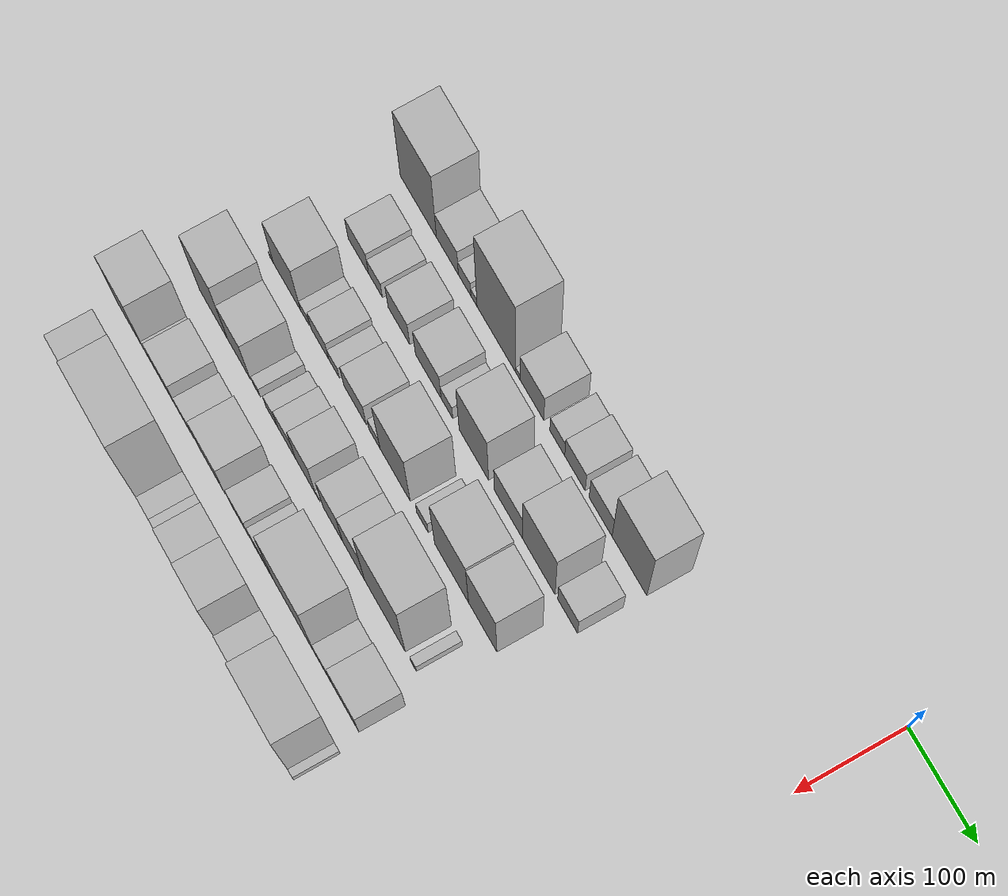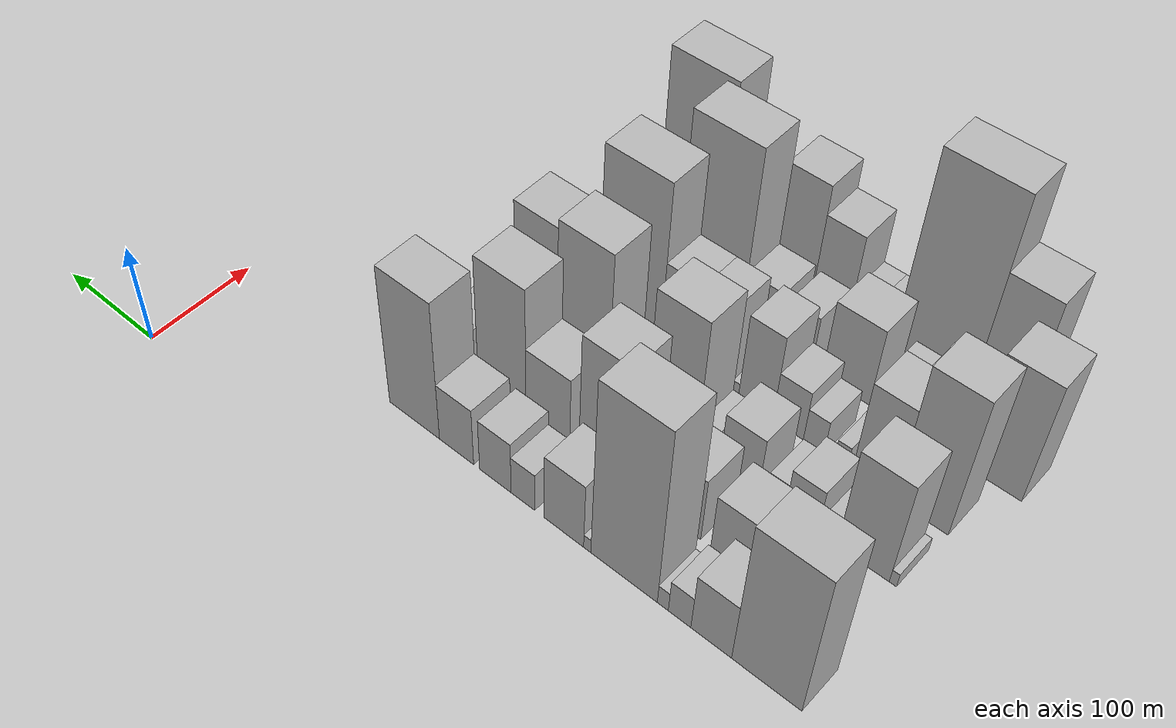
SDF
<sdf version="1.6">
 <world name="default">
  <model name="building_12">
   <static>1</static>
   <pose>100.0000 -537.3972 0 0.000000 0.000000 0.000000</pose>
   <link name="link">
    <pose>0 0 78.00 0 0 0</pose>
    <collision name="collision"><geometry><box><size>40.0000 57.5685 156.0000</size></box></geometry></collision>
    <visual name="visual">
     <cast_shadows>0</cast_shadows>
     <geometry><box><size>40.0000 57.5685 156.0000</size></box></geometry>
     <material>
      <script>
       <uri>model://HANNAS_wall/materials/scripts</uri>
       <uri>model://HANNAS_wall/materials/textures</uri>
       <name>vrc/HANNAS_wall</name>
      </script>
     </material>
    </visual>
   </link>
  </model>
  <model name="building_13">
   <static>1</static>
   <pose>100.0000 -491.3248 0 0.000000 0.000000 0.000000</pose>
   <link name="link">
    <pose>0 0 31.50 0 0 0</pose>
    <collision name="collision"><geometry><box><size>40.0000 34.5762 63.0000</size></box></geometry></collision>
    <visual name="visual">
     <cast_shadows>0</cast_shadows>
     <geometry><box><size>40.0000 34.5762 63.0000</size></box></geometry>
     <material>
      <script>
       <uri>model://HANNAS_wall/materials/scripts</uri>
       <uri>model://HANNAS_wall/materials/textures</uri>
       <name>vrc/HANNAS_wall</name>
      </script>
     </material>
    </visual>
   </link>
  </model>
  <model name="building_14">
   <static>1</static>
   <pose>100.0000 -464.2556 0 0.000000 0.000000 0.000000</pose>
   <link name="link">
    <pose>0 0 18.00 0 0 0</pose>
    <collision name="collision"><geometry><box><size>40.0000 19.5621 36.0000</size></box></geometry></collision>
    <visual name="visual">
     <cast_shadows>0</cast_shadows>
     <geometry><box><size>40.0000 19.5621 36.0000</size></box></geometry>
     <material>
      <script>
       <uri>model://HANNAS_wall/materials/scripts</uri>
       <uri>model://HANNAS_wall/materials/textures</uri>
       <name>vrc/HANNAS_wall</name>
      </script>
     </material>
    </visual>
   </link>
  </model>
  <model name="building_15">
   <static>1</static>
   <pose>100.0000 -449.6534 0 0.000000 0.000000 0.000000</pose>
   <link name="link">
    <pose>0 0 10.50 0 0 0</pose>
    <collision name="collision"><geometry><box><size>40.0000 9.6423 21.0000</size></box></geometry></collision>
    <visual name="visual">
     <cast_shadows>0</cast_shadows>
     <geometry><box><size>40.0000 9.6423 21.0000</size></box></geometry>
     <material>
      <script>
       <uri>model://HANNAS_wall/materials/scripts</uri>
       <uri>model://HANNAS_wall/materials/textures</uri>
       <name>vrc/HANNAS_wall</name>
      </script>
     </material>
    </visual>
   </link>
  </model>
  <model name="building_16">
   <static>1</static>
   <pose>100.0000 -414.7941 0 0.000000 0.000000 0.000000</pose>
   <link name="link">
    <pose>0 0 96.00 0 0 0</pose>
    <collision name="collision"><geometry><box><size>40.0000 60.0765 192.0000</size></box></geometry></collision>
    <visual name="visual">
     <cast_shadows>0</cast_shadows>
     <geometry><box><size>40.0000 60.0765 192.0000</size></box></geometry>
     <material>
      <script>
       <uri>model://HANNAS_wall/materials/scripts</uri>
       <uri>model://HANNAS_wall/materials/textures</uri>
       <name>vrc/HANNAS_wall</name>
      </script>
     </material>
    </visual>
   </link>
  </model>
  <model name="building_17">
   <static>1</static>
   <pose>100.0000 -381.3917 0 0.000000 0.000000 0.000000</pose>
   <link name="link">
    <pose>0 0 7.50 0 0 0</pose>
    <collision name="collision"><geometry><box><size>40.0000 6.7281 15.0000</size></box></geometry></collision>
    <visual name="visual">
     <cast_shadows>0</cast_shadows>
     <geometry><box><size>40.0000 6.7281 15.0000</size></box></geometry>
     <material>
      <script>
       <uri>model://HANNAS_wall/materials/scripts</uri>
       <uri>model://HANNAS_wall/materials/textures</uri>
       <name>vrc/HANNAS_wall</name>
      </script>
     </material>
    </visual>
   </link>
  </model>
  <model name="building_18">
   <static>1</static>
   <pose>100.0000 -359.4194 0 0.000000 0.000000 0.000000</pose>
   <link name="link">
    <pose>0 0 36.00 0 0 0</pose>
    <collision name="collision"><geometry><box><size>40.0000 37.2165 72.0000</size></box></geometry></collision>
    <visual name="visual">
     <cast_shadows>0</cast_shadows>
     <geometry><box><size>40.0000 37.2165 72.0000</size></box></geometry>
     <material>
      <script>
       <uri>model://HANNAS_wall/materials/scripts</uri>
       <uri>model://HANNAS_wall/materials/textures</uri>
       <name>vrc/HANNAS_wall</name>
      </script>
     </material>
    </visual>
   </link>
  </model>
  <model name="building_19">
   <static>1</static>
   <pose>100.0000 -320.2997 0 0.000000 0.000000 0.000000</pose>
   <link name="link">
    <pose>0 0 21.00 0 0 0</pose>
    <collision name="collision"><geometry><box><size>40.0000 23.0229 42.0000</size></box></geometry></collision>
    <visual name="visual">
     <cast_shadows>0</cast_shadows>
     <geometry><box><size>40.0000 23.0229 42.0000</size></box></geometry>
     <material>
      <script>
       <uri>model://HANNAS_wall/materials/scripts</uri>
       <uri>model://HANNAS_wall/materials/textures</uri>
       <name>vrc/HANNAS_wall</name>
      </script>
     </material>
    </visual>
   </link>
  </model>
  <model name="building_20">
   <static>1</static>
   <pose>100.0000 -293.1393 0 0.000000 0.000000 0.000000</pose>
   <link name="link">
    <pose>0 0 28.50 0 0 0</pose>
    <collision name="collision"><geometry><box><size>40.0000 31.2978 57.0000</size></box></geometry></collision>
    <visual name="visual">
     <cast_shadows>0</cast_shadows>
     <geometry><box><size>40.0000 31.2978 57.0000</size></box></geometry>
     <material>
      <script>
       <uri>model://HANNAS_wall/materials/scripts</uri>
       <uri>model://HANNAS_wall/materials/textures</uri>
       <name>vrc/HANNAS_wall</name>
      </script>
     </material>
    </visual>
   </link>
  </model>
  <model name="building_21">
   <static>1</static>
   <pose>100.0000 -254.0097 0 0.000000 0.000000 0.000000</pose>
   <link name="link">
    <pose>0 0 31.50 0 0 0</pose>
    <collision name="collision"><geometry><box><size>40.0000 34.9615 63.0000</size></box></geometry></collision>
    <visual name="visual">
     <cast_shadows>0</cast_shadows>
     <geometry><box><size>40.0000 34.9615 63.0000</size></box></geometry>
     <material>
      <script>
       <uri>model://HANNAS_wall/materials/scripts</uri>
       <uri>model://HANNAS_wall/materials/textures</uri>
       <name>vrc/HANNAS_wall</name>
      </script>
     </material>
    </visual>
   </link>
  </model>
  <model name="building_22">
   <static>1</static>
   <pose>100.0000 -210.2316 0 0.000000 0.000000 0.000000</pose>
   <link name="link">
    <pose>0 0 75.00 0 0 0</pose>
    <collision name="collision"><geometry><box><size>40.0000 52.5947 150.0000</size></box></geometry></collision>
    <visual name="visual">
     <cast_shadows>0</cast_shadows>
     <geometry><box><size>40.0000 52.5947 150.0000</size></box></geometry>
     <material>
      <script>
       <uri>model://HANNAS_wall/materials/scripts</uri>
       <uri>model://HANNAS_wall/materials/textures</uri>
       <name>vrc/HANNAS_wall</name>
      </script>
     </material>
    </visual>
   </link>
  </model>
  <model name="building_66">
   <static>1</static>
   <pose>160.0000 -525.5142 0 0.000000 0.000000 0.000000</pose>
   <link name="link">
    <pose>0 0 27.00 0 0 0</pose>
    <collision name="collision"><geometry><box><size>40.0000 32.3669 54.0000</size></box></geometry></collision>
    <visual name="visual">
     <cast_shadows>0</cast_shadows>
     <geometry><box><size>40.0000 32.3669 54.0000</size></box></geometry>
     <material>
      <script>
       <uri>model://HANNAS_wall/materials/scripts</uri>
       <uri>model://HANNAS_wall/materials/textures</uri>
       <name>vrc/HANNAS_wall</name>
      </script>
     </material>
    </visual>
   </link>
  </model>
  <model name="building_67">
   <static>1</static>
   <pose>160.0000 -498.3228 0 0.000000 0.000000 0.000000</pose>
   <link name="link">
    <pose>0 0 19.50 0 0 0</pose>
    <collision name="collision"><geometry><box><size>40.0000 22.0160 39.0000</size></box></geometry></collision>
    <visual name="visual">
     <cast_shadows>0</cast_shadows>
     <geometry><box><size>40.0000 22.0160 39.0000</size></box></geometry>
     <material>
      <script>
       <uri>model://HANNAS_wall/materials/scripts</uri>
       <uri>model://HANNAS_wall/materials/textures</uri>
       <name>vrc/HANNAS_wall</name>
      </script>
     </material>
    </visual>
   </link>
  </model>
  <model name="building_68">
   <static>1</static>
   <pose>160.0000 -461.2327 0 0.000000 0.000000 0.000000</pose>
   <link name="link">
    <pose>0 0 30.00 0 0 0</pose>
    <collision name="collision"><geometry><box><size>40.0000 34.1643 60.0000</size></box></geometry></collision>
    <visual name="visual">
     <cast_shadows>0</cast_shadows>
     <geometry><box><size>40.0000 34.1643 60.0000</size></box></geometry>
     <material>
      <script>
       <uri>model://HANNAS_wall/materials/scripts</uri>
       <uri>model://HANNAS_wall/materials/textures</uri>
       <name>vrc/HANNAS_wall</name>
      </script>
     </material>
    </visual>
   </link>
  </model>
  <model name="building_69">
   <static>1</static>
   <pose>160.0000 -415.0489 0 0.000000 0.000000 0.000000</pose>
   <link name="link">
    <pose>0 0 34.50 0 0 0</pose>
    <collision name="collision"><geometry><box><size>40.0000 40.2032 69.0000</size></box></geometry></collision>
    <visual name="visual">
     <cast_shadows>0</cast_shadows>
     <geometry><box><size>40.0000 40.2032 69.0000</size></box></geometry>
     <material>
      <script>
       <uri>model://HANNAS_wall/materials/scripts</uri>
       <uri>model://HANNAS_wall/materials/textures</uri>
       <name>vrc/HANNAS_wall</name>
      </script>
     </material>
    </visual>
   </link>
  </model>
  <model name="building_70">
   <static>1</static>
   <pose>160.0000 -385.8430 0 0.000000 0.000000 0.000000</pose>
   <link name="link">
    <pose>0 0 18.00 0 0 0</pose>
    <collision name="collision"><geometry><box><size>40.0000 18.2085 36.0000</size></box></geometry></collision>
    <visual name="visual">
     <cast_shadows>0</cast_shadows>
     <geometry><box><size>40.0000 18.2085 36.0000</size></box></geometry>
     <material>
      <script>
       <uri>model://HANNAS_wall/materials/scripts</uri>
       <uri>model://HANNAS_wall/materials/textures</uri>
       <name>vrc/HANNAS_wall</name>
      </script>
     </material>
    </visual>
   </link>
  </model>
  <model name="building_71">
   <static>1</static>
   <pose>160.0000 -343.9238 0 0.000000 0.000000 0.000000</pose>
   <link name="link">
    <pose>0 0 66.00 0 0 0</pose>
    <collision name="collision"><geometry><box><size>40.0000 45.6300 132.0000</size></box></geometry></collision>
    <visual name="visual">
     <cast_shadows>0</cast_shadows>
     <geometry><box><size>40.0000 45.6300 132.0000</size></box></geometry>
     <material>
      <script>
       <uri>model://HANNAS_wall/materials/scripts</uri>
       <uri>model://HANNAS_wall/materials/textures</uri>
       <name>vrc/HANNAS_wall</name>
      </script>
     </material>
    </visual>
   </link>
  </model>
  <model name="building_72">
   <static>1</static>
   <pose>160.0000 -290.3531 0 0.000000 0.000000 0.000000</pose>
   <link name="link">
    <pose>0 0 37.50 0 0 0</pose>
    <collision name="collision"><geometry><box><size>40.0000 43.5113 75.0000</size></box></geometry></collision>
    <visual name="visual">
     <cast_shadows>0</cast_shadows>
     <geometry><box><size>40.0000 43.5113 75.0000</size></box></geometry>
     <material>
      <script>
       <uri>model://HANNAS_wall/materials/scripts</uri>
       <uri>model://HANNAS_wall/materials/textures</uri>
       <name>vrc/HANNAS_wall</name>
      </script>
     </material>
    </visual>
   </link>
  </model>
  <model name="building_73">
   <static>1</static>
   <pose>160.0000 -243.8575 0 0.000000 0.000000 0.000000</pose>
   <link name="link">
    <pose>0 0 69.00 0 0 0</pose>
    <collision name="collision"><geometry><box><size>40.0000 49.4799 138.0000</size></box></geometry></collision>
    <visual name="visual">
     <cast_shadows>0</cast_shadows>
     <geometry><box><size>40.0000 49.4799 138.0000</size></box></geometry>
     <material>
      <script>
       <uri>model://HANNAS_wall/materials/scripts</uri>
       <uri>model://HANNAS_wall/materials/textures</uri>
       <name>vrc/HANNAS_wall</name>
      </script>
     </material>
    </visual>
   </link>
  </model>
  <model name="building_74">
   <static>1</static>
   <pose>160.0000 -200.0406 0 0.000000 0.000000 0.000000</pose>
   <link name="link">
    <pose>0 0 27.00 0 0 0</pose>
    <collision name="collision"><geometry><box><size>40.0000 30.1539 54.0000</size></box></geometry></collision>
    <visual name="visual">
     <cast_shadows>0</cast_shadows>
     <geometry><box><size>40.0000 30.1539 54.0000</size></box></geometry>
     <material>
      <script>
       <uri>model://HANNAS_wall/materials/scripts</uri>
       <uri>model://HANNAS_wall/materials/textures</uri>
       <name>vrc/HANNAS_wall</name>
      </script>
     </material>
    </visual>
   </link>
  </model>
  <model name="building_114">
   <static>1</static>
   <pose>220.0000 -556.2665 0 0.000000 0.000000 0.000000</pose>
   <link name="link">
    <pose>0 0 7.50 0 0 0</pose>
    <collision name="collision"><geometry><box><size>40.0000 6.0457 15.0000</size></box></geometry></collision>
    <visual name="visual">
     <cast_shadows>0</cast_shadows>
     <geometry><box><size>40.0000 6.0457 15.0000</size></box></geometry>
     <material>
      <script>
       <uri>model://HANNAS_wall/materials/scripts</uri>
       <uri>model://HANNAS_wall/materials/textures</uri>
       <name>vrc/HANNAS_wall</name>
      </script>
     </material>
    </visual>
   </link>
  </model>
  <model name="building_115">
   <static>1</static>
   <pose>220.0000 -531.4280 0 0.000000 0.000000 0.000000</pose>
   <link name="link">
    <pose>0 0 55.50 0 0 0</pose>
    <collision name="collision"><geometry><box><size>40.0000 43.6312 111.0000</size></box></geometry></collision>
    <visual name="visual">
     <cast_shadows>0</cast_shadows>
     <geometry><box><size>40.0000 43.6312 111.0000</size></box></geometry>
     <material>
      <script>
       <uri>model://HANNAS_wall/materials/scripts</uri>
       <uri>model://HANNAS_wall/materials/textures</uri>
       <name>vrc/HANNAS_wall</name>
      </script>
     </material>
    </visual>
   </link>
  </model>
  <model name="building_116">
   <static>1</static>
   <pose>220.0000 -502.8705 0 0.000000 0.000000 0.000000</pose>
   <link name="link">
    <pose>0 0 13.50 0 0 0</pose>
    <collision name="collision"><geometry><box><size>40.0000 13.4838 27.0000</size></box></geometry></collision>
    <visual name="visual">
     <cast_shadows>0</cast_shadows>
     <geometry><box><size>40.0000 13.4838 27.0000</size></box></geometry>
     <material>
      <script>
       <uri>model://HANNAS_wall/materials/scripts</uri>
       <uri>model://HANNAS_wall/materials/textures</uri>
       <name>vrc/HANNAS_wall</name>
      </script>
     </material>
    </visual>
   </link>
  </model>
  <model name="building_117">
   <static>1</static>
   <pose>220.0000 -478.8894 0 0.000000 0.000000 0.000000</pose>
   <link name="link">
    <pose>0 0 24.00 0 0 0</pose>
    <collision name="collision"><geometry><box><size>40.0000 28.4785 48.0000</size></box></geometry></collision>
    <visual name="visual">
     <cast_shadows>0</cast_shadows>
     <geometry><box><size>40.0000 28.4785 48.0000</size></box></geometry>
     <material>
      <script>
       <uri>model://HANNAS_wall/materials/scripts</uri>
       <uri>model://HANNAS_wall/materials/textures</uri>
       <name>vrc/HANNAS_wall</name>
      </script>
     </material>
    </visual>
   </link>
  </model>
  <model name="building_118">
   <static>1</static>
   <pose>220.0000 -456.1730 0 0.000000 0.000000 0.000000</pose>
   <link name="link">
    <pose>0 0 15.00 0 0 0</pose>
    <collision name="collision"><geometry><box><size>40.0000 16.9542 30.0000</size></box></geometry></collision>
    <visual name="visual">
     <cast_shadows>0</cast_shadows>
     <geometry><box><size>40.0000 16.9542 30.0000</size></box></geometry>
     <material>
      <script>
       <uri>model://HANNAS_wall/materials/scripts</uri>
       <uri>model://HANNAS_wall/materials/textures</uri>
       <name>vrc/HANNAS_wall</name>
      </script>
     </material>
    </visual>
   </link>
  </model>
  <model name="building_119">
   <static>1</static>
   <pose>220.0000 -422.9628 0 0.000000 0.000000 0.000000</pose>
   <link name="link">
    <pose>0 0 30.00 0 0 0</pose>
    <collision name="collision"><geometry><box><size>40.0000 35.4663 60.0000</size></box></geometry></collision>
    <visual name="visual">
     <cast_shadows>0</cast_shadows>
     <geometry><box><size>40.0000 35.4663 60.0000</size></box></geometry>
     <material>
      <script>
       <uri>model://HANNAS_wall/materials/scripts</uri>
       <uri>model://HANNAS_wall/materials/textures</uri>
       <name>vrc/HANNAS_wall</name>
      </script>
     </material>
    </visual>
   </link>
  </model>
  <model name="building_120">
   <static>1</static>
   <pose>220.0000 -392.4118 0 0.000000 0.000000 0.000000</pose>
   <link name="link">
    <pose>0 0 16.50 0 0 0</pose>
    <collision name="collision"><geometry><box><size>40.0000 17.6357 33.0000</size></box></geometry></collision>
    <visual name="visual">
     <cast_shadows>0</cast_shadows>
     <geometry><box><size>40.0000 17.6357 33.0000</size></box></geometry>
     <material>
      <script>
       <uri>model://HANNAS_wall/materials/scripts</uri>
       <uri>model://HANNAS_wall/materials/textures</uri>
       <name>vrc/HANNAS_wall</name>
      </script>
     </material>
    </visual>
   </link>
  </model>
  <model name="building_121">
   <static>1</static>
   <pose>220.0000 -360.0302 0 0.000000 0.000000 0.000000</pose>
   <link name="link">
    <pose>0 0 70.50 0 0 0</pose>
    <collision name="collision"><geometry><box><size>40.0000 47.1276 141.0000</size></box></geometry></collision>
    <visual name="visual">
     <cast_shadows>0</cast_shadows>
     <geometry><box><size>40.0000 47.1276 141.0000</size></box></geometry>
     <material>
      <script>
       <uri>model://HANNAS_wall/materials/scripts</uri>
       <uri>model://HANNAS_wall/materials/textures</uri>
       <name>vrc/HANNAS_wall</name>
      </script>
     </material>
    </visual>
   </link>
  </model>
  <model name="building_122">
   <static>1</static>
   <pose>220.0000 -317.4743 0 0.000000 0.000000 0.000000</pose>
   <link name="link">
    <pose>0 0 16.50 0 0 0</pose>
    <collision name="collision"><geometry><box><size>40.0000 17.9841 33.0000</size></box></geometry></collision>
    <visual name="visual">
     <cast_shadows>0</cast_shadows>
     <geometry><box><size>40.0000 17.9841 33.0000</size></box></geometry>
     <material>
      <script>
       <uri>model://HANNAS_wall/materials/scripts</uri>
       <uri>model://HANNAS_wall/materials/textures</uri>
       <name>vrc/HANNAS_wall</name>
      </script>
     </material>
    </visual>
   </link>
  </model>
  <model name="building_123">
   <static>1</static>
   <pose>220.0000 -272.3001 0 0.000000 0.000000 0.000000</pose>
   <link name="link">
    <pose>0 0 73.50 0 0 0</pose>
    <collision name="collision"><geometry><box><size>40.0000 52.3643 147.0000</size></box></geometry></collision>
    <visual name="visual">
     <cast_shadows>0</cast_shadows>
     <geometry><box><size>40.0000 52.3643 147.0000</size></box></geometry>
     <material>
      <script>
       <uri>model://HANNAS_wall/materials/scripts</uri>
       <uri>model://HANNAS_wall/materials/textures</uri>
       <name>vrc/HANNAS_wall</name>
      </script>
     </material>
    </visual>
   </link>
  </model>
  <model name="building_124">
   <static>1</static>
   <pose>220.0000 -224.4416 0 0.000000 0.000000 0.000000</pose>
   <link name="link">
    <pose>0 0 69.00 0 0 0</pose>
    <collision name="collision"><geometry><box><size>40.0000 43.3527 138.0000</size></box></geometry></collision>
    <visual name="visual">
     <cast_shadows>0</cast_shadows>
     <geometry><box><size>40.0000 43.3527 138.0000</size></box></geometry>
     <material>
      <script>
       <uri>model://HANNAS_wall/materials/scripts</uri>
       <uri>model://HANNAS_wall/materials/textures</uri>
       <name>vrc/HANNAS_wall</name>
      </script>
     </material>
    </visual>
   </link>
  </model>
  <model name="building_171">
   <static>1</static>
   <pose>280.0000 -539.6971 0 0.000000 0.000000 0.000000</pose>
   <link name="link">
    <pose>0 0 75.00 0 0 0</pose>
    <collision name="collision"><geometry><box><size>40.0000 45.7496 150.0000</size></box></geometry></collision>
    <visual name="visual">
     <cast_shadows>0</cast_shadows>
     <geometry><box><size>40.0000 45.7496 150.0000</size></box></geometry>
     <material>
      <script>
       <uri>model://HANNAS_wall/materials/scripts</uri>
       <uri>model://HANNAS_wall/materials/textures</uri>
       <name>vrc/HANNAS_wall</name>
      </script>
     </material>
    </visual>
   </link>
  </model>
  <model name="building_172">
   <static>1</static>
   <pose>280.0000 -498.7229 0 0.000000 0.000000 0.000000</pose>
   <link name="link">
    <pose>0 0 51.00 0 0 0</pose>
    <collision name="collision"><geometry><box><size>40.0000 36.1987 102.0000</size></box></geometry></collision>
    <visual name="visual">
     <cast_shadows>0</cast_shadows>
     <geometry><box><size>40.0000 36.1987 102.0000</size></box></geometry>
     <material>
      <script>
       <uri>model://HANNAS_wall/materials/scripts</uri>
       <uri>model://HANNAS_wall/materials/textures</uri>
       <name>vrc/HANNAS_wall</name>
      </script>
     </material>
    </visual>
   </link>
  </model>
  <model name="building_173">
   <static>1</static>
   <pose>280.0000 -470.7075 0 0.000000 0.000000 0.000000</pose>
   <link name="link">
    <pose>0 0 12.00 0 0 0</pose>
    <collision name="collision"><geometry><box><size>40.0000 11.8321 24.0000</size></box></geometry></collision>
    <visual name="visual">
     <cast_shadows>0</cast_shadows>
     <geometry><box><size>40.0000 11.8321 24.0000</size></box></geometry>
     <material>
      <script>
       <uri>model://HANNAS_wall/materials/scripts</uri>
       <uri>model://HANNAS_wall/materials/textures</uri>
       <name>vrc/HANNAS_wall</name>
      </script>
     </material>
    </visual>
   </link>
  </model>
  <model name="building_174">
   <static>1</static>
   <pose>280.0000 -446.4335 0 0.000000 0.000000 0.000000</pose>
   <link name="link">
    <pose>0 0 18.00 0 0 0</pose>
    <collision name="collision"><geometry><box><size>40.0000 18.7159 36.0000</size></box></geometry></collision>
    <visual name="visual">
     <cast_shadows>0</cast_shadows>
     <geometry><box><size>40.0000 18.7159 36.0000</size></box></geometry>
     <material>
      <script>
       <uri>model://HANNAS_wall/materials/scripts</uri>
       <uri>model://HANNAS_wall/materials/textures</uri>
       <name>vrc/HANNAS_wall</name>
      </script>
     </material>
    </visual>
   </link>
  </model>
  <model name="building_175">
   <static>1</static>
   <pose>280.0000 -422.9935 0 0.000000 0.000000 0.000000</pose>
   <link name="link">
    <pose>0 0 27.00 0 0 0</pose>
    <collision name="collision"><geometry><box><size>40.0000 28.1640 54.0000</size></box></geometry></collision>
    <visual name="visual">
     <cast_shadows>0</cast_shadows>
     <geometry><box><size>40.0000 28.1640 54.0000</size></box></geometry>
     <material>
      <script>
       <uri>model://HANNAS_wall/materials/scripts</uri>
       <uri>model://HANNAS_wall/materials/textures</uri>
       <name>vrc/HANNAS_wall</name>
      </script>
     </material>
    </visual>
   </link>
  </model>
  <model name="building_176">
   <static>1</static>
   <pose>280.0000 -392.8354 0 0.000000 0.000000 0.000000</pose>
   <link name="link">
    <pose>0 0 46.50 0 0 0</pose>
    <collision name="collision"><geometry><box><size>40.0000 32.1523 93.0000</size></box></geometry></collision>
    <visual name="visual">
     <cast_shadows>0</cast_shadows>
     <geometry><box><size>40.0000 32.1523 93.0000</size></box></geometry>
     <material>
      <script>
       <uri>model://HANNAS_wall/materials/scripts</uri>
       <uri>model://HANNAS_wall/materials/textures</uri>
       <name>vrc/HANNAS_wall</name>
      </script>
     </material>
    </visual>
   </link>
  </model>
  <model name="building_177">
   <static>1</static>
   <pose>280.0000 -373.5688 0 0.000000 0.000000 0.000000</pose>
   <link name="link">
    <pose>0 0 7.50 0 0 0</pose>
    <collision name="collision"><geometry><box><size>40.0000 6.3809 15.0000</size></box></geometry></collision>
    <visual name="visual">
     <cast_shadows>0</cast_shadows>
     <geometry><box><size>40.0000 6.3809 15.0000</size></box></geometry>
     <material>
      <script>
       <uri>model://HANNAS_wall/materials/scripts</uri>
       <uri>model://HANNAS_wall/materials/textures</uri>
       <name>vrc/HANNAS_wall</name>
      </script>
     </material>
    </visual>
   </link>
  </model>
  <model name="building_178">
   <static>1</static>
   <pose>280.0000 -349.8319 0 0.000000 0.000000 0.000000</pose>
   <link name="link">
    <pose>0 0 46.50 0 0 0</pose>
    <collision name="collision"><geometry><box><size>40.0000 31.0929 93.0000</size></box></geometry></collision>
    <visual name="visual">
     <cast_shadows>0</cast_shadows>
     <geometry><box><size>40.0000 31.0929 93.0000</size></box></geometry>
     <material>
      <script>
       <uri>model://HANNAS_wall/materials/scripts</uri>
       <uri>model://HANNAS_wall/materials/textures</uri>
       <name>vrc/HANNAS_wall</name>
      </script>
     </material>
    </visual>
   </link>
  </model>
  <model name="building_179">
   <static>1</static>
   <pose>280.0000 -317.2176 0 0.000000 0.000000 0.000000</pose>
   <link name="link">
    <pose>0 0 46.50 0 0 0</pose>
    <collision name="collision"><geometry><box><size>40.0000 34.1357 93.0000</size></box></geometry></collision>
    <visual name="visual">
     <cast_shadows>0</cast_shadows>
     <geometry><box><size>40.0000 34.1357 93.0000</size></box></geometry>
     <material>
      <script>
       <uri>model://HANNAS_wall/materials/scripts</uri>
       <uri>model://HANNAS_wall/materials/textures</uri>
       <name>vrc/HANNAS_wall</name>
      </script>
     </material>
    </visual>
   </link>
  </model>
  <model name="building_180">
   <static>1</static>
   <pose>280.0000 -268.6460 0 0.000000 0.000000 0.000000</pose>
   <link name="link">
    <pose>0 0 87.00 0 0 0</pose>
    <collision name="collision"><geometry><box><size>40.0000 63.0074 174.0000</size></box></geometry></collision>
    <visual name="visual">
     <cast_shadows>0</cast_shadows>
     <geometry><box><size>40.0000 63.0074 174.0000</size></box></geometry>
     <material>
      <script>
       <uri>model://HANNAS_wall/materials/scripts</uri>
       <uri>model://HANNAS_wall/materials/textures</uri>
       <name>vrc/HANNAS_wall</name>
      </script>
     </material>
    </visual>
   </link>
  </model>
  <model name="building_181">
   <static>1</static>
   <pose>280.0000 -224.5621 0 0.000000 0.000000 0.000000</pose>
   <link name="link">
    <pose>0 0 10.50 0 0 0</pose>
    <collision name="collision"><geometry><box><size>40.0000 9.1604 21.0000</size></box></geometry></collision>
    <visual name="visual">
     <cast_shadows>0</cast_shadows>
     <geometry><box><size>40.0000 9.1604 21.0000</size></box></geometry>
     <material>
      <script>
       <uri>model://HANNAS_wall/materials/scripts</uri>
       <uri>model://HANNAS_wall/materials/textures</uri>
       <name>vrc/HANNAS_wall</name>
      </script>
     </material>
    </visual>
   </link>
  </model>
  <model name="building_220">
   <static>1</static>
   <pose>340.0000 -563.7847 0 0.000000 0.000000 0.000000</pose>
   <link name="link">
    <pose>0 0 64.50 0 0 0</pose>
    <collision name="collision"><geometry><box><size>40.0000 44.4822 129.0000</size></box></geometry></collision>
    <visual name="visual">
     <cast_shadows>0</cast_shadows>
     <geometry><box><size>40.0000 44.4822 129.0000</size></box></geometry>
     <material>
      <script>
       <uri>model://HANNAS_wall/materials/scripts</uri>
       <uri>model://HANNAS_wall/materials/textures</uri>
       <name>vrc/HANNAS_wall</name>
      </script>
     </material>
    </visual>
   </link>
  </model>
  <model name="building_221">
   <static>1</static>
   <pose>340.0000 -534.9392 0 0.000000 0.000000 0.000000</pose>
   <link name="link">
    <pose>0 0 13.50 0 0 0</pose>
    <collision name="collision"><geometry><box><size>40.0000 13.2089 27.0000</size></box></geometry></collision>
    <visual name="visual">
     <cast_shadows>0</cast_shadows>
     <geometry><box><size>40.0000 13.2089 27.0000</size></box></geometry>
     <material>
      <script>
       <uri>model://HANNAS_wall/materials/scripts</uri>
       <uri>model://HANNAS_wall/materials/textures</uri>
       <name>vrc/HANNAS_wall</name>
      </script>
     </material>
    </visual>
   </link>
  </model>
  <model name="building_222">
   <static>1</static>
   <pose>340.0000 -509.1311 0 0.000000 0.000000 0.000000</pose>
   <link name="link">
    <pose>0 0 33.00 0 0 0</pose>
    <collision name="collision"><geometry><box><size>40.0000 38.4071 66.0000</size></box></geometry></collision>
    <visual name="visual">
     <cast_shadows>0</cast_shadows>
     <geometry><box><size>40.0000 38.4071 66.0000</size></box></geometry>
     <material>
      <script>
       <uri>model://HANNAS_wall/materials/scripts</uri>
       <uri>model://HANNAS_wall/materials/textures</uri>
       <name>vrc/HANNAS_wall</name>
      </script>
     </material>
    </visual>
   </link>
  </model>
  <model name="building_223">
   <static>1</static>
   <pose>340.0000 -473.7840 0 0.000000 0.000000 0.000000</pose>
   <link name="link">
    <pose>0 0 22.50 0 0 0</pose>
    <collision name="collision"><geometry><box><size>40.0000 24.2871 45.0000</size></box></geometry></collision>
    <visual name="visual">
     <cast_shadows>0</cast_shadows>
     <geometry><box><size>40.0000 24.2871 45.0000</size></box></geometry>
     <material>
      <script>
       <uri>model://HANNAS_wall/materials/scripts</uri>
       <uri>model://HANNAS_wall/materials/textures</uri>
       <name>vrc/HANNAS_wall</name>
      </script>
     </material>
    </visual>
   </link>
  </model>
  <model name="building_224">
   <static>1</static>
   <pose>340.0000 -432.9471 0 0.000000 0.000000 0.000000</pose>
   <link name="link">
    <pose>0 0 42.00 0 0 0</pose>
    <collision name="collision"><geometry><box><size>40.0000 43.3866 84.0000</size></box></geometry></collision>
    <visual name="visual">
     <cast_shadows>0</cast_shadows>
     <geometry><box><size>40.0000 43.3866 84.0000</size></box></geometry>
     <material>
      <script>
       <uri>model://HANNAS_wall/materials/scripts</uri>
       <uri>model://HANNAS_wall/materials/textures</uri>
       <name>vrc/HANNAS_wall</name>
      </script>
     </material>
    </visual>
   </link>
  </model>
  <model name="building_225">
   <static>1</static>
   <pose>340.0000 -386.9211 0 0.000000 0.000000 0.000000</pose>
   <link name="link">
    <pose>0 0 28.50 0 0 0</pose>
    <collision name="collision"><geometry><box><size>40.0000 28.6655 57.0000</size></box></geometry></collision>
    <visual name="visual">
     <cast_shadows>0</cast_shadows>
     <geometry><box><size>40.0000 28.6655 57.0000</size></box></geometry>
     <material>
      <script>
       <uri>model://HANNAS_wall/materials/scripts</uri>
       <uri>model://HANNAS_wall/materials/textures</uri>
       <name>vrc/HANNAS_wall</name>
      </script>
     </material>
    </visual>
   </link>
  </model>
  <model name="building_226">
   <static>1</static>
   <pose>340.0000 -350.4218 0 0.000000 0.000000 0.000000</pose>
   <link name="link">
    <pose>0 0 30.00 0 0 0</pose>
    <collision name="collision"><geometry><box><size>40.0000 34.3332 60.0000</size></box></geometry></collision>
    <visual name="visual">
     <cast_shadows>0</cast_shadows>
     <geometry><box><size>40.0000 34.3332 60.0000</size></box></geometry>
     <material>
      <script>
       <uri>model://HANNAS_wall/materials/scripts</uri>
       <uri>model://HANNAS_wall/materials/textures</uri>
       <name>vrc/HANNAS_wall</name>
      </script>
     </material>
    </visual>
   </link>
  </model>
  <model name="building_227">
   <static>1</static>
   <pose>340.0000 -301.0251 0 0.000000 0.000000 0.000000</pose>
   <link name="link">
    <pose>0 0 93.00 0 0 0</pose>
    <collision name="collision"><geometry><box><size>40.0000 64.4602 186.0000</size></box></geometry></collision>
    <visual name="visual">
     <cast_shadows>0</cast_shadows>
     <geometry><box><size>40.0000 64.4602 186.0000</size></box></geometry>
     <material>
      <script>
       <uri>model://HANNAS_wall/materials/scripts</uri>
       <uri>model://HANNAS_wall/materials/textures</uri>
       <name>vrc/HANNAS_wall</name>
      </script>
     </material>
    </visual>
   </link>
  </model>
  <model name="building_228">
   <static>1</static>
   <pose>340.0000 -256.3850 0 0.000000 0.000000 0.000000</pose>
   <link name="link">
    <pose>0 0 24.00 0 0 0</pose>
    <collision name="collision"><geometry><box><size>40.0000 24.8198 48.0000</size></box></geometry></collision>
    <visual name="visual">
     <cast_shadows>0</cast_shadows>
     <geometry><box><size>40.0000 24.8198 48.0000</size></box></geometry>
     <material>
      <script>
       <uri>model://HANNAS_wall/materials/scripts</uri>
       <uri>model://HANNAS_wall/materials/textures</uri>
       <name>vrc/HANNAS_wall</name>
      </script>
     </material>
    </visual>
   </link>
  </model>
  <model name="building_229">
   <static>1</static>
   <pose>340.0000 -222.6340 0 0.000000 0.000000 0.000000</pose>
   <link name="link">
    <pose>0 0 36.00 0 0 0</pose>
    <collision name="collision"><geometry><box><size>40.0000 42.6822 72.0000</size></box></geometry></collision>
    <visual name="visual">
     <cast_shadows>0</cast_shadows>
     <geometry><box><size>40.0000 42.6822 72.0000</size></box></geometry>
     <material>
      <script>
       <uri>model://HANNAS_wall/materials/scripts</uri>
       <uri>model://HANNAS_wall/materials/textures</uri>
       <name>vrc/HANNAS_wall</name>
      </script>
     </material>
    </visual>
   </link>
  </model>
  <model name="building_272">
   <static>1</static>
   <pose>400.0000 -554.4009 0 0.000000 0.000000 0.000000</pose>
   <link name="link">
    <pose>0 0 10.50 0 0 0</pose>
    <collision name="collision"><geometry><box><size>40.0000 9.4775 21.0000</size></box></geometry></collision>
    <visual name="visual">
     <cast_shadows>0</cast_shadows>
     <geometry><box><size>40.0000 9.4775 21.0000</size></box></geometry>
     <material>
      <script>
       <uri>model://HANNAS_wall/materials/scripts</uri>
       <uri>model://HANNAS_wall/materials/textures</uri>
       <name>vrc/HANNAS_wall</name>
      </script>
     </material>
    </visual>
   </link>
  </model>
  <model name="building_273">
   <static>1</static>
   <pose>400.0000 -527.5334 0 0.000000 0.000000 0.000000</pose>
   <link name="link">
    <pose>0 0 67.50 0 0 0</pose>
    <collision name="collision"><geometry><box><size>40.0000 44.2575 135.0000</size></box></geometry></collision>
    <visual name="visual">
     <cast_shadows>0</cast_shadows>
     <geometry><box><size>40.0000 44.2575 135.0000</size></box></geometry>
     <material>
      <script>
       <uri>model://HANNAS_wall/materials/scripts</uri>
       <uri>model://HANNAS_wall/materials/textures</uri>
       <name>vrc/HANNAS_wall</name>
      </script>
     </material>
    </visual>
   </link>
  </model>
  <model name="building_274">
   <static>1</static>
   <pose>400.0000 -470.0393 0 0.000000 0.000000 0.000000</pose>
   <link name="link">
    <pose>0 0 105.00 0 0 0</pose>
    <collision name="collision"><geometry><box><size>40.0000 70.7307 210.0000</size></box></geometry></collision>
    <visual name="visual">
     <cast_shadows>0</cast_shadows>
     <geometry><box><size>40.0000 70.7307 210.0000</size></box></geometry>
     <material>
      <script>
       <uri>model://HANNAS_wall/materials/scripts</uri>
       <uri>model://HANNAS_wall/materials/textures</uri>
       <name>vrc/HANNAS_wall</name>
      </script>
     </material>
    </visual>
   </link>
  </model>
  <model name="building_275">
   <static>1</static>
   <pose>400.0000 -424.7773 0 0.000000 0.000000 0.000000</pose>
   <link name="link">
    <pose>0 0 18.00 0 0 0</pose>
    <collision name="collision"><geometry><box><size>40.0000 19.7933 36.0000</size></box></geometry></collision>
    <visual name="visual">
     <cast_shadows>0</cast_shadows>
     <geometry><box><size>40.0000 19.7933 36.0000</size></box></geometry>
     <material>
      <script>
       <uri>model://HANNAS_wall/materials/scripts</uri>
       <uri>model://HANNAS_wall/materials/textures</uri>
       <name>vrc/HANNAS_wall</name>
      </script>
     </material>
    </visual>
   </link>
  </model>
  <model name="building_276">
   <static>1</static>
   <pose>400.0000 -404.5308 0 0.000000 0.000000 0.000000</pose>
   <link name="link">
    <pose>0 0 18.00 0 0 0</pose>
    <collision name="collision"><geometry><box><size>40.0000 20.6998 36.0000</size></box></geometry></collision>
    <visual name="visual">
     <cast_shadows>0</cast_shadows>
     <geometry><box><size>40.0000 20.6998 36.0000</size></box></geometry>
     <material>
      <script>
       <uri>model://HANNAS_wall/materials/scripts</uri>
       <uri>model://HANNAS_wall/materials/textures</uri>
       <name>vrc/HANNAS_wall</name>
      </script>
     </material>
    </visual>
   </link>
  </model>
  <model name="building_277">
   <static>1</static>
   <pose>400.0000 -376.2971 0 0.000000 0.000000 0.000000</pose>
   <link name="link">
    <pose>0 0 46.50 0 0 0</pose>
    <collision name="collision"><geometry><box><size>40.0000 35.7676 93.0000</size></box></geometry></collision>
    <visual name="visual">
     <cast_shadows>0</cast_shadows>
     <geometry><box><size>40.0000 35.7676 93.0000</size></box></geometry>
     <material>
      <script>
       <uri>model://HANNAS_wall/materials/scripts</uri>
       <uri>model://HANNAS_wall/materials/textures</uri>
       <name>vrc/HANNAS_wall</name>
      </script>
     </material>
    </visual>
   </link>
  </model>
  <model name="building_278">
   <static>1</static>
   <pose>400.0000 -338.4730 0 0.000000 0.000000 0.000000</pose>
   <link name="link">
    <pose>0 0 61.50 0 0 0</pose>
    <collision name="collision"><geometry><box><size>40.0000 39.8807 123.0000</size></box></geometry></collision>
    <visual name="visual">
     <cast_shadows>0</cast_shadows>
     <geometry><box><size>40.0000 39.8807 123.0000</size></box></geometry>
     <material>
      <script>
       <uri>model://HANNAS_wall/materials/scripts</uri>
       <uri>model://HANNAS_wall/materials/textures</uri>
       <name>vrc/HANNAS_wall</name>
      </script>
     </material>
    </visual>
   </link>
  </model>
  <model name="building_279">
   <static>1</static>
   <pose>400.0000 -299.2414 0 0.000000 0.000000 0.000000</pose>
   <link name="link">
    <pose>0 0 22.50 0 0 0</pose>
    <collision name="collision"><geometry><box><size>40.0000 24.5823 45.0000</size></box></geometry></collision>
    <visual name="visual">
     <cast_shadows>0</cast_shadows>
     <geometry><box><size>40.0000 24.5823 45.0000</size></box></geometry>
     <material>
      <script>
       <uri>model://HANNAS_wall/materials/scripts</uri>
       <uri>model://HANNAS_wall/materials/textures</uri>
       <name>vrc/HANNAS_wall</name>
      </script>
     </material>
    </visual>
   </link>
  </model>
  <model name="building_280">
   <static>1</static>
   <pose>400.0000 -281.6088 0 0.000000 0.000000 0.000000</pose>
   <link name="link">
    <pose>0 0 12.00 0 0 0</pose>
    <collision name="collision"><geometry><box><size>40.0000 10.6829 24.0000</size></box></geometry></collision>
    <visual name="visual">
     <cast_shadows>0</cast_shadows>
     <geometry><box><size>40.0000 10.6829 24.0000</size></box></geometry>
     <material>
      <script>
       <uri>model://HANNAS_wall/materials/scripts</uri>
       <uri>model://HANNAS_wall/materials/textures</uri>
       <name>vrc/HANNAS_wall</name>
      </script>
     </material>
    </visual>
   </link>
  </model>
  <model name="building_281">
   <static>1</static>
   <pose>400.0000 -234.3795 0 0.000000 0.000000 0.000000</pose>
   <link name="link">
    <pose>0 0 85.50 0 0 0</pose>
    <collision name="collision"><geometry><box><size>40.0000 65.7758 171.0000</size></box></geometry></collision>
    <visual name="visual">
     <cast_shadows>0</cast_shadows>
     <geometry><box><size>40.0000 65.7758 171.0000</size></box></geometry>
     <material>
      <script>
       <uri>model://HANNAS_wall/materials/scripts</uri>
       <uri>model://HANNAS_wall/materials/textures</uri>
       <name>vrc/HANNAS_wall</name>
      </script>
     </material>
    </visual>
   </link>
  </model>
  <model name="building_282">
   <static>1</static>
   <pose>400.0000 -197.8035 0 0.000000 0.000000 0.000000</pose>
   <link name="link">
    <pose>0 0 7.50 0 0 0</pose>
    <collision name="collision"><geometry><box><size>40.0000 7.3762 15.0000</size></box></geometry></collision>
    <visual name="visual">
     <cast_shadows>0</cast_shadows>
     <geometry><box><size>40.0000 7.3762 15.0000</size></box></geometry>
     <material>
      <script>
       <uri>model://HANNAS_wall/materials/scripts</uri>
       <uri>model://HANNAS_wall/materials/textures</uri>
       <name>vrc/HANNAS_wall</name>
      </script>
     </material>
    </visual>
   </link>
  </model>
 </world>
</sdf>
